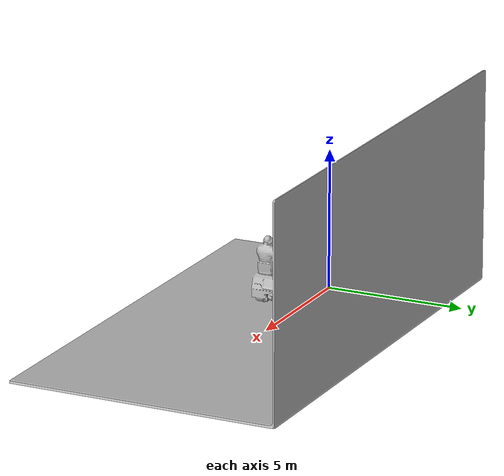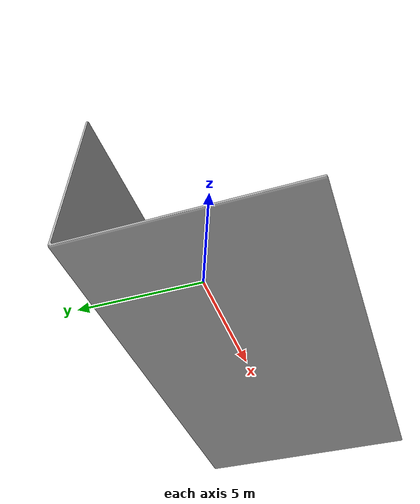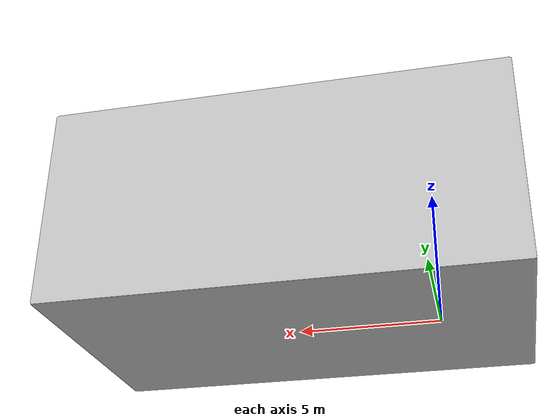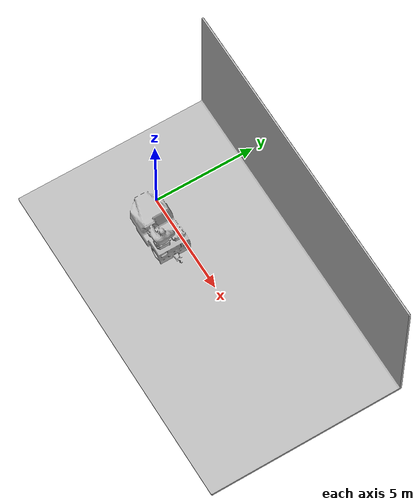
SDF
<?xml version="1.0" ?>
<sdf version="1.6">
  <model name="baggage_truck">
    <static>true</static>
    <link name="link">
      <collision name="collision">
        <pose>0 0 0.052 0 0 -1.57079632679</pose>
        <geometry>
          <mesh>
            <scale>0.0013 0.0013 0.0013</scale>
            <uri>model://baggage_truck/baggage_truck.stl</uri>
          </mesh>
        </geometry>
      </collision>
      <visual name="visual">
        <pose>0 0 0.052 0 0 -1.57079632679</pose>
        <geometry>
          <mesh>
            <scale>0.0013 0.0013 0.0013</scale>
            <uri>model://baggage_truck/baggage_truck.stl</uri>
          </mesh>
        </geometry>
      </visual>
    </link>
  </model>
</sdf>
